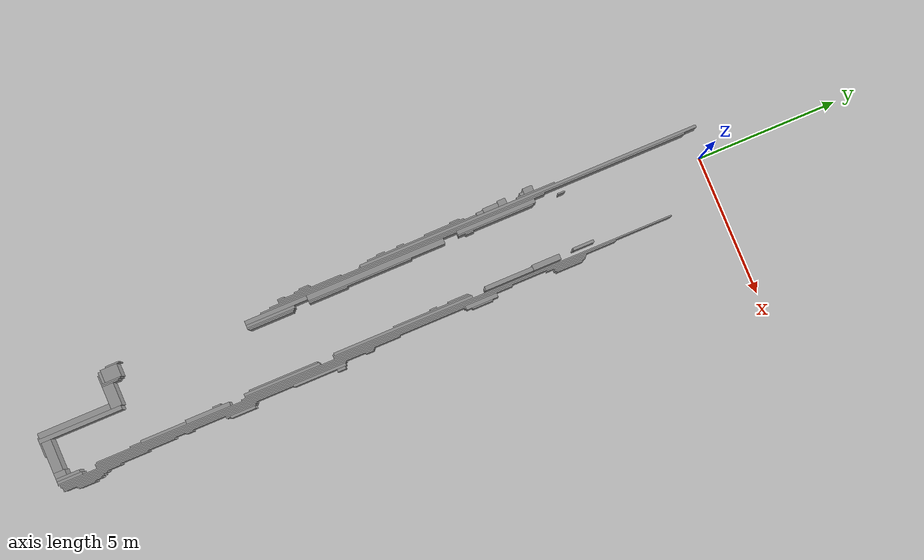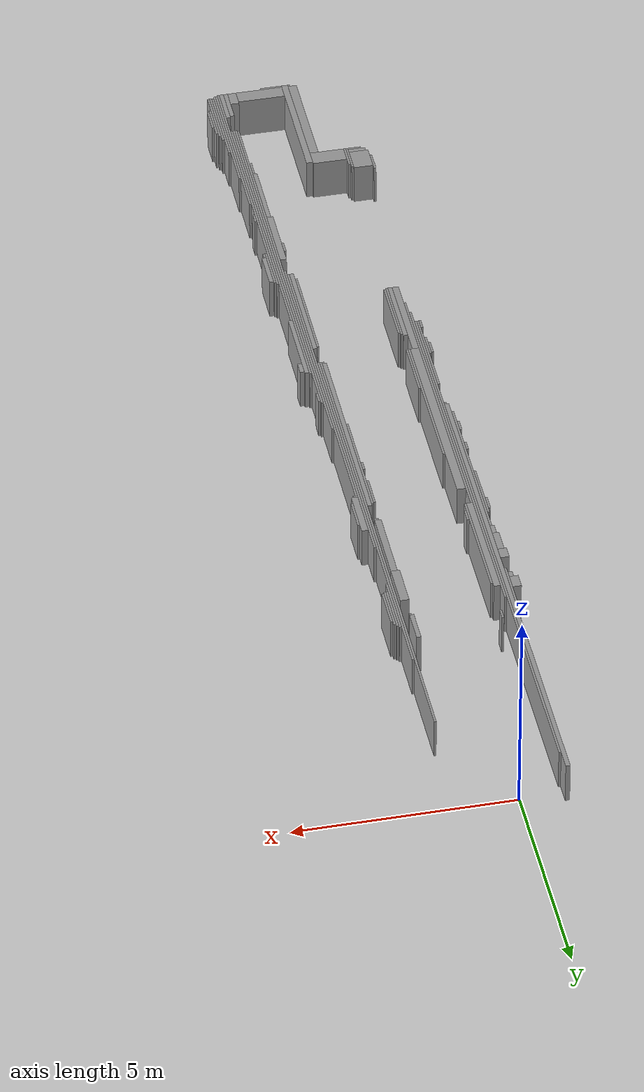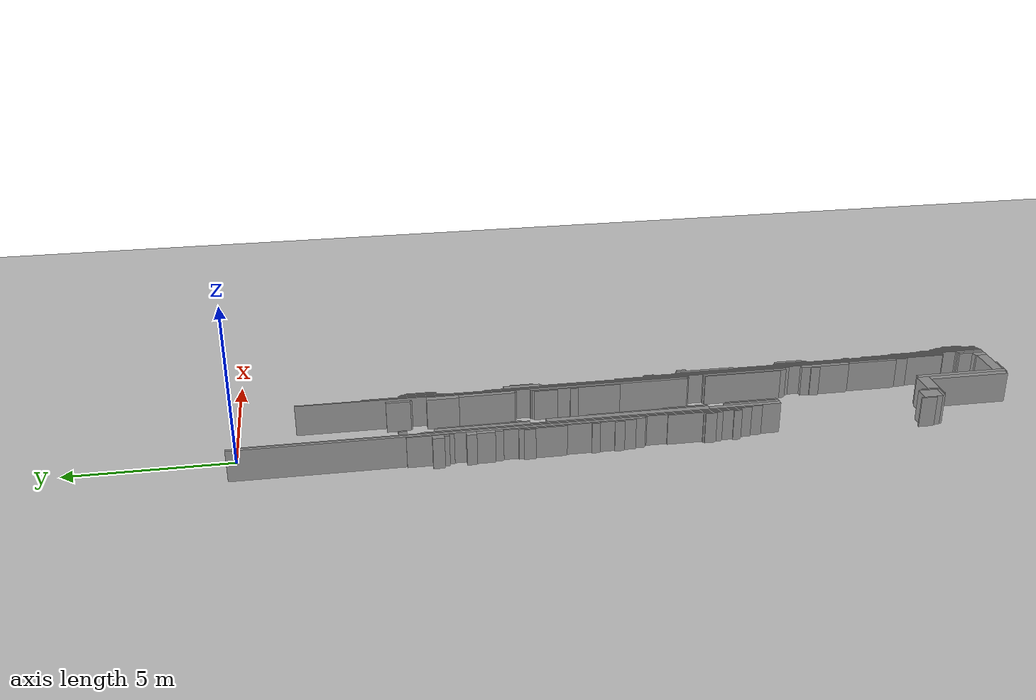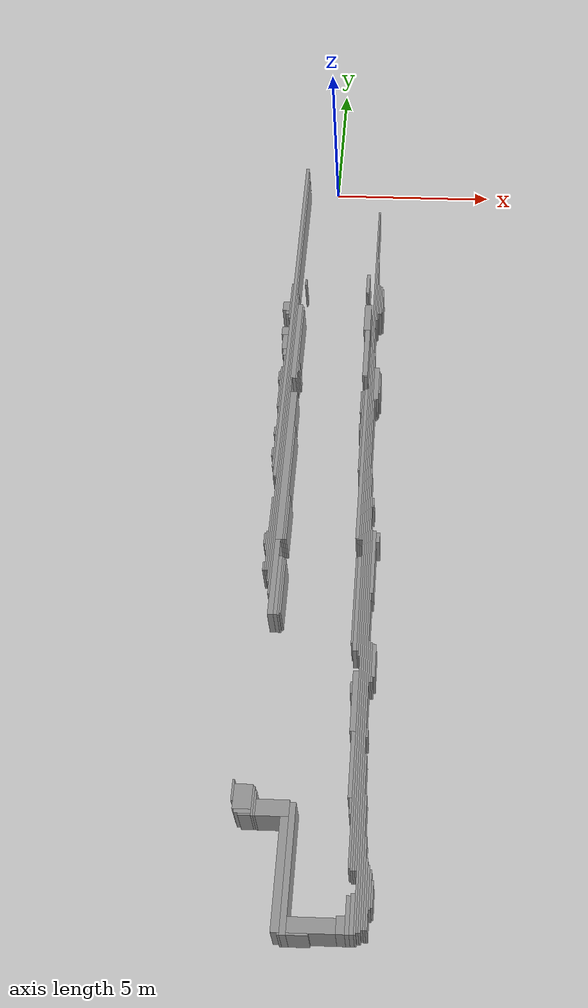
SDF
<sdf version="1.6">
 <world name="default">
  <include><uri>model://ground_plane</uri></include>
  <include><uri>model://sun</uri></include>
  <model name="wall_344">
   <static>1</static>
   <pose>-0.9999999999999929 -5.949999999999999 0.5 0 0 0</pose>
   <link name="link">
    <collision name="collision"><geometry><box><size>0.1 12.3 1.0</size></box></geometry></collision>
    <visual name="visual">
     <geometry><box><size>0.1 12.3 1.0</size></box></geometry>
     <material>
      <script><uri>file://media/materials/scripts/gazebo.material</uri><name>Gazebo/Grey</name></script>
     </material>
    </visual>
   </link>
  </model>
  <model name="wall_348">
   <static>1</static>
   <pose>-0.9249999999999972 -7.674999999999997 0.5 0 0 0</pose>
   <link name="link">
    <collision name="collision">
     <geometry><box><size>0.05 14.850000000000001 1.0</size></box></geometry>
    </collision>
    <visual name="visual">
     <geometry><box><size>0.05 14.850000000000001 1.0</size></box></geometry>
     <material>
      <script><uri>file://media/materials/scripts/gazebo.material</uri><name>Gazebo/Grey</name></script>
     </material>
    </visual>
   </link>
  </model>
  <model name="wall_361">
   <static>1</static>
   <pose>1.4750000000000014 -7.924999999999997 0.5 0 0 0</pose>
   <link name="link">
    <collision name="collision">
     <geometry><box><size>0.05 12.350000000000001 1.0</size></box></geometry>
    </collision>
    <visual name="visual">
     <geometry><box><size>0.05 12.350000000000001 1.0</size></box></geometry>
     <material>
      <script><uri>file://media/materials/scripts/gazebo.material</uri><name>Gazebo/Grey</name></script>
     </material>
    </visual>
   </link>
  </model>
  <model name="wall_368">
   <static>1</static>
   <pose>1.5250000000000057 -8.95 0.5 0 0 0</pose>
   <link name="link">
    <collision name="collision"><geometry><box><size>0.05 10.3 1.0</size></box></geometry></collision>
    <visual name="visual">
     <geometry><box><size>0.05 10.3 1.0</size></box></geometry>
     <material>
      <script><uri>file://media/materials/scripts/gazebo.material</uri><name>Gazebo/Grey</name></script>
     </material>
    </visual>
   </link>
  </model>
  <model name="wall_375">
   <static>1</static>
   <pose>1.250000000000007 -4.8749999999999964 0.5 0 0 0</pose>
   <link name="link">
    <collision name="collision"><geometry><box><size>0.1 0.75 1.0</size></box></geometry></collision>
    <visual name="visual">
     <geometry><box><size>0.1 0.75 1.0</size></box></geometry>
     <material>
      <script><uri>file://media/materials/scripts/gazebo.material</uri><name>Gazebo/Grey</name></script>
     </material>
    </visual>
   </link>
  </model>
  <model name="wall_377">
   <static>1</static>
   <pose>-0.6749999999999972 -4.8749999999999964 0.5 0 0 0</pose>
   <link name="link">
    <collision name="collision"><geometry><box><size>0.05 0.25 1.0</size></box></geometry></collision>
    <visual name="visual">
     <geometry><box><size>0.05 0.25 1.0</size></box></geometry>
     <material>
      <script><uri>file://media/materials/scripts/gazebo.material</uri><name>Gazebo/Grey</name></script>
     </material>
    </visual>
   </link>
  </model>
  <model name="wall_378">
   <static>1</static>
   <pose>1.5750000000000028 -5.6249999999999964 0.5 0 0 0</pose>
   <link name="link">
    <collision name="collision">
     <geometry><box><size>0.05 1.4500000000000002 1.0</size></box></geometry>
    </collision>
    <visual name="visual">
     <geometry><box><size>0.05 1.4500000000000002 1.0</size></box></geometry>
     <material>
      <script><uri>file://media/materials/scripts/gazebo.material</uri><name>Gazebo/Grey</name></script>
     </material>
    </visual>
   </link>
  </model>
  <model name="wall_379">
   <static>1</static>
   <pose>-1.0749999999999957 -5.649999999999999 0.5 0 0 0</pose>
   <link name="link">
    <collision name="collision">
     <geometry><box><size>0.05 1.4000000000000001 1.0</size></box></geometry>
    </collision>
    <visual name="visual">
     <geometry><box><size>0.05 1.4000000000000001 1.0</size></box></geometry>
     <material>
      <script><uri>file://media/materials/scripts/gazebo.material</uri><name>Gazebo/Grey</name></script>
     </material>
    </visual>
   </link>
  </model>
  <model name="wall_380">
   <static>1</static>
   <pose>1.625000000000007 -5.524999999999999 0.5 0 0 0</pose>
   <link name="link">
    <collision name="collision">
     <geometry><box><size>0.05 1.1500000000000001 1.0</size></box></geometry>
    </collision>
    <visual name="visual">
     <geometry><box><size>0.05 1.1500000000000001 1.0</size></box></geometry>
     <material>
      <script><uri>file://media/materials/scripts/gazebo.material</uri><name>Gazebo/Grey</name></script>
     </material>
    </visual>
   </link>
  </model>
  <model name="wall_382">
   <static>1</static>
   <pose>1.6750000000000043 -5.549999999999997 0.5 0 0 0</pose>
   <link name="link">
    <collision name="collision"><geometry><box><size>0.05 1.1 1.0</size></box></geometry></collision>
    <visual name="visual">
     <geometry><box><size>0.05 1.1 1.0</size></box></geometry>
     <material>
      <script><uri>file://media/materials/scripts/gazebo.material</uri><name>Gazebo/Grey</name></script>
     </material>
    </visual>
   </link>
  </model>
  <model name="wall_389">
   <static>1</static>
   <pose>1.7250000000000014 -5.574999999999999 0.5 0 0 0</pose>
   <link name="link">
    <collision name="collision">
     <geometry><box><size>0.05 0.9500000000000001 1.0</size></box></geometry>
    </collision>
    <visual name="visual">
     <geometry><box><size>0.05 0.9500000000000001 1.0</size></box></geometry>
     <material>
      <script><uri>file://media/materials/scripts/gazebo.material</uri><name>Gazebo/Grey</name></script>
     </material>
    </visual>
   </link>
  </model>
  <model name="wall_394">
   <static>1</static>
   <pose>1.2750000000000057 -5.274999999999999 0.5 0 0 0</pose>
   <link name="link">
    <collision name="collision"><geometry><box><size>0.05 0.05 1.0</size></box></geometry></collision>
    <visual name="visual">
     <geometry><box><size>0.05 0.05 1.0</size></box></geometry>
     <material>
      <script><uri>file://media/materials/scripts/gazebo.material</uri><name>Gazebo/Grey</name></script>
     </material>
    </visual>
   </link>
  </model>
  <model name="wall_397">
   <static>1</static>
   <pose>-0.8749999999999929 -10.424999999999997 0.5 0 0 0</pose>
   <link name="link">
    <collision name="collision"><geometry><box><size>0.05 10.05 1.0</size></box></geometry></collision>
    <visual name="visual">
     <geometry><box><size>0.05 10.05 1.0</size></box></geometry>
     <material>
      <script><uri>file://media/materials/scripts/gazebo.material</uri><name>Gazebo/Grey</name></script>
     </material>
    </visual>
   </link>
  </model>
  <model name="wall_400">
   <static>1</static>
   <pose>-1.1999999999999957 -5.8749999999999964 0.5 0 0 0</pose>
   <link name="link">
    <collision name="collision">
     <geometry><box><size>0.2 0.35000000000000003 1.0</size></box></geometry>
    </collision>
    <visual name="visual">
     <geometry><box><size>0.2 0.35000000000000003 1.0</size></box></geometry>
     <material>
      <script><uri>file://media/materials/scripts/gazebo.material</uri><name>Gazebo/Grey</name></script>
     </material>
    </visual>
   </link>
  </model>
  <model name="wall_401">
   <static>1</static>
   <pose>1.3000000000000043 -6.2499999999999964 0.5 0 0 0</pose>
   <link name="link">
    <collision name="collision"><geometry><box><size>0.2 1.0 1.0</size></box></geometry></collision>
    <visual name="visual">
     <geometry><box><size>0.2 1.0 1.0</size></box></geometry>
     <material>
      <script><uri>file://media/materials/scripts/gazebo.material</uri><name>Gazebo/Grey</name></script>
     </material>
    </visual>
   </link>
  </model>
  <model name="wall_402">
   <static>1</static>
   <pose>-0.7749999999999986 -7.224999999999998 0.5 0 0 0</pose>
   <link name="link">
    <collision name="collision">
     <geometry><box><size>0.15000000000000002 2.85 1.0</size></box></geometry>
    </collision>
    <visual name="visual">
     <geometry><box><size>0.15000000000000002 2.85 1.0</size></box></geometry>
     <material>
      <script><uri>file://media/materials/scripts/gazebo.material</uri><name>Gazebo/Grey</name></script>
     </material>
    </visual>
   </link>
  </model>
  <model name="wall_403">
   <static>1</static>
   <pose>-0.6749999999999972 -7.274999999999999 0.5 0 0 0</pose>
   <link name="link">
    <collision name="collision"><geometry><box><size>0.05 2.75 1.0</size></box></geometry></collision>
    <visual name="visual">
     <geometry><box><size>0.05 2.75 1.0</size></box></geometry>
     <material>
      <script><uri>file://media/materials/scripts/gazebo.material</uri><name>Gazebo/Grey</name></script>
     </material>
    </visual>
   </link>
  </model>
  <model name="wall_404">
   <static>1</static>
   <pose>-1.1499999999999986 -6.1249999999999964 0.5 0 0 0</pose>
   <link name="link">
    <collision name="collision">
     <geometry><box><size>0.1 0.15000000000000002 1.0</size></box></geometry>
    </collision>
    <visual name="visual">
     <geometry><box><size>0.1 0.15000000000000002 1.0</size></box></geometry>
     <material>
      <script><uri>file://media/materials/scripts/gazebo.material</uri><name>Gazebo/Grey</name></script>
     </material>
    </visual>
   </link>
  </model>
  <model name="wall_407">
   <static>1</static>
   <pose>-1.1499999999999986 -6.849999999999998 0.5 0 0 0</pose>
   <link name="link">
    <collision name="collision">
     <geometry><box><size>0.2 0.30000000000000004 1.0</size></box></geometry>
    </collision>
    <visual name="visual">
     <geometry><box><size>0.2 0.30000000000000004 1.0</size></box></geometry>
     <material>
      <script><uri>file://media/materials/scripts/gazebo.material</uri><name>Gazebo/Grey</name></script>
     </material>
    </visual>
   </link>
  </model>
  <model name="wall_410">
   <static>1</static>
   <pose>1.3250000000000028 -7.6249999999999964 0.5 0 0 0</pose>
   <link name="link">
    <collision name="collision">
     <geometry><box><size>0.15000000000000002 1.75 1.0</size></box></geometry>
    </collision>
    <visual name="visual">
     <geometry><box><size>0.15000000000000002 1.75 1.0</size></box></geometry>
     <material>
      <script><uri>file://media/materials/scripts/gazebo.material</uri><name>Gazebo/Grey</name></script>
     </material>
    </visual>
   </link>
  </model>
  <model name="wall_412">
   <static>1</static>
   <pose>-1.124999999999993 -7.274999999999999 0.5 0 0 0</pose>
   <link name="link">
    <collision name="collision">
     <geometry><box><size>0.15000000000000002 0.55 1.0</size></box></geometry>
    </collision>
    <visual name="visual">
     <geometry><box><size>0.15000000000000002 0.55 1.0</size></box></geometry>
     <material>
      <script><uri>file://media/materials/scripts/gazebo.material</uri><name>Gazebo/Grey</name></script>
     </material>
    </visual>
   </link>
  </model>
  <model name="wall_420">
   <static>1</static>
   <pose>-1.0999999999999943 -7.674999999999997 0.5 0 0 0</pose>
   <link name="link">
    <collision name="collision"><geometry><box><size>0.1 0.25 1.0</size></box></geometry></collision>
    <visual name="visual">
     <geometry><box><size>0.1 0.25 1.0</size></box></geometry>
     <material>
      <script><uri>file://media/materials/scripts/gazebo.material</uri><name>Gazebo/Grey</name></script>
     </material>
    </visual>
   </link>
  </model>
  <model name="wall_421">
   <static>1</static>
   <pose>1.5750000000000028 -12.474999999999998 0.5 0 0 0</pose>
   <link name="link">
    <collision name="collision"><geometry><box><size>0.05 9.75 1.0</size></box></geometry></collision>
    <visual name="visual">
     <geometry><box><size>0.05 9.75 1.0</size></box></geometry>
     <material>
      <script><uri>file://media/materials/scripts/gazebo.material</uri><name>Gazebo/Grey</name></script>
     </material>
    </visual>
   </link>
  </model>
  <model name="wall_423">
   <static>1</static>
   <pose>-1.0749999999999957 -9.799999999999997 0.5 0 0 0</pose>
   <link name="link">
    <collision name="collision"><geometry><box><size>0.05 4.0 1.0</size></box></geometry></collision>
    <visual name="visual">
     <geometry><box><size>0.05 4.0 1.0</size></box></geometry>
     <material>
      <script><uri>file://media/materials/scripts/gazebo.material</uri><name>Gazebo/Grey</name></script>
     </material>
    </visual>
   </link>
  </model>
  <model name="wall_425">
   <static>1</static>
   <pose>-0.6249999999999929 -8.25 0.5 0 0 0</pose>
   <link name="link">
    <collision name="collision">
     <geometry><box><size>0.05 0.30000000000000004 1.0</size></box></geometry>
    </collision>
    <visual name="visual">
     <geometry><box><size>0.05 0.30000000000000004 1.0</size></box></geometry>
     <material>
      <script><uri>file://media/materials/scripts/gazebo.material</uri><name>Gazebo/Grey</name></script>
     </material>
    </visual>
   </link>
  </model>
  <model name="wall_427">
   <static>1</static>
   <pose>1.6750000000000043 -8.774999999999999 0.5 0 0 0</pose>
   <link name="link">
    <collision name="collision">
     <geometry><box><size>0.15000000000000002 1.1500000000000001 1.0</size></box></geometry>
    </collision>
    <visual name="visual">
     <geometry><box><size>0.15000000000000002 1.1500000000000001 1.0</size></box></geometry>
     <material>
      <script><uri>file://media/materials/scripts/gazebo.material</uri><name>Gazebo/Grey</name></script>
     </material>
    </visual>
   </link>
  </model>
  <model name="wall_428">
   <static>1</static>
   <pose>-1.124999999999993 -8.974999999999998 0.5 0 0 0</pose>
   <link name="link">
    <collision name="collision">
     <geometry><box><size>0.05 1.4500000000000002 1.0</size></box></geometry>
    </collision>
    <visual name="visual">
     <geometry><box><size>0.05 1.4500000000000002 1.0</size></box></geometry>
     <material>
      <script><uri>file://media/materials/scripts/gazebo.material</uri><name>Gazebo/Grey</name></script>
     </material>
    </visual>
   </link>
  </model>
  <model name="wall_431">
   <static>1</static>
   <pose>-1.1749999999999972 -8.575 0.5 0 0 0</pose>
   <link name="link">
    <collision name="collision">
     <geometry><box><size>0.05 0.35000000000000003 1.0</size></box></geometry>
    </collision>
    <visual name="visual">
     <geometry><box><size>0.05 0.35000000000000003 1.0</size></box></geometry>
     <material>
      <script><uri>file://media/materials/scripts/gazebo.material</uri><name>Gazebo/Grey</name></script>
     </material>
    </visual>
   </link>
  </model>
  <model name="wall_432">
   <static>1</static>
   <pose>1.7750000000000057 -8.774999999999999 0.5 0 0 0</pose>
   <link name="link">
    <collision name="collision"><geometry><box><size>0.05 0.75 1.0</size></box></geometry></collision>
    <visual name="visual">
     <geometry><box><size>0.05 0.75 1.0</size></box></geometry>
     <material>
      <script><uri>file://media/materials/scripts/gazebo.material</uri><name>Gazebo/Grey</name></script>
     </material>
    </visual>
   </link>
  </model>
  <model name="wall_434">
   <static>1</static>
   <pose>1.3500000000000014 -8.524999999999999 0.5 0 0 0</pose>
   <link name="link">
    <collision name="collision"><geometry><box><size>0.1 0.05 1.0</size></box></geometry></collision>
    <visual name="visual">
     <geometry><box><size>0.1 0.05 1.0</size></box></geometry>
     <material>
      <script><uri>file://media/materials/scripts/gazebo.material</uri><name>Gazebo/Grey</name></script>
     </material>
    </visual>
   </link>
  </model>
  <model name="wall_436">
   <static>1</static>
   <pose>-0.8249999999999957 -12.224999999999998 0.5 0 0 0</pose>
   <link name="link">
    <collision name="collision"><geometry><box><size>0.05 7.15 1.0</size></box></geometry></collision>
    <visual name="visual">
     <geometry><box><size>0.05 7.15 1.0</size></box></geometry>
     <material>
      <script><uri>file://media/materials/scripts/gazebo.material</uri><name>Gazebo/Grey</name></script>
     </material>
    </visual>
   </link>
  </model>
  <model name="wall_439">
   <static>1</static>
   <pose>1.4000000000000057 -11.524999999999999 0.5 0 0 0</pose>
   <link name="link">
    <collision name="collision"><geometry><box><size>0.1 5.050000000000001 1.0</size></box></geometry></collision>
    <visual name="visual">
     <geometry><box><size>0.1 5.050000000000001 1.0</size></box></geometry>
     <material>
      <script><uri>file://media/materials/scripts/gazebo.material</uri><name>Gazebo/Grey</name></script>
     </material>
    </visual>
   </link>
  </model>
  <model name="wall_440">
   <static>1</static>
   <pose>1.3250000000000028 -10.45 0.5 0 0 0</pose>
   <link name="link">
    <collision name="collision">
     <geometry><box><size>0.05 2.8000000000000003 1.0</size></box></geometry>
    </collision>
    <visual name="visual">
     <geometry><box><size>0.05 2.8000000000000003 1.0</size></box></geometry>
     <material>
      <script><uri>file://media/materials/scripts/gazebo.material</uri><name>Gazebo/Grey</name></script>
     </material>
    </visual>
   </link>
  </model>
  <model name="wall_441">
   <static>1</static>
   <pose>1.2750000000000057 -9.474999999999998 0.5 0 0 0</pose>
   <link name="link">
    <collision name="collision"><geometry><box><size>0.05 0.75 1.0</size></box></geometry></collision>
    <visual name="visual">
     <geometry><box><size>0.05 0.75 1.0</size></box></geometry>
     <material>
      <script><uri>file://media/materials/scripts/gazebo.material</uri><name>Gazebo/Grey</name></script>
     </material>
    </visual>
   </link>
  </model>
  <model name="wall_443">
   <static>1</static>
   <pose>-0.6999999999999957 -11.649999999999999 0.5 0 0 0</pose>
   <link name="link">
    <collision name="collision"><geometry><box><size>0.2 5.0 1.0</size></box></geometry></collision>
    <visual name="visual">
     <geometry><box><size>0.2 5.0 1.0</size></box></geometry>
     <material>
      <script><uri>file://media/materials/scripts/gazebo.material</uri><name>Gazebo/Grey</name></script>
     </material>
    </visual>
   </link>
  </model>
  <model name="wall_445">
   <static>1</static>
   <pose>1.6500000000000057 -9.375 0.5 0 0 0</pose>
   <link name="link">
    <collision name="collision"><geometry><box><size>0.1 0.05 1.0</size></box></geometry></collision>
    <visual name="visual">
     <geometry><box><size>0.1 0.05 1.0</size></box></geometry>
     <material>
      <script><uri>file://media/materials/scripts/gazebo.material</uri><name>Gazebo/Grey</name></script>
     </material>
    </visual>
   </link>
  </model>
  <model name="wall_447">
   <static>1</static>
   <pose>1.625000000000007 -13.45 0.5 0 0 0</pose>
   <link name="link">
    <collision name="collision"><geometry><box><size>0.05 8.1 1.0</size></box></geometry></collision>
    <visual name="visual">
     <geometry><box><size>0.05 8.1 1.0</size></box></geometry>
     <material>
      <script><uri>file://media/materials/scripts/gazebo.material</uri><name>Gazebo/Grey</name></script>
     </material>
    </visual>
   </link>
  </model>
  <model name="wall_452">
   <static>1</static>
   <pose>1.2750000000000057 -10.375 0.5 0 0 0</pose>
   <link name="link">
    <collision name="collision"><geometry><box><size>0.05 0.25 1.0</size></box></geometry></collision>
    <visual name="visual">
     <geometry><box><size>0.05 0.25 1.0</size></box></geometry>
     <material>
      <script><uri>file://media/materials/scripts/gazebo.material</uri><name>Gazebo/Grey</name></script>
     </material>
    </visual>
   </link>
  </model>
  <model name="wall_455">
   <static>1</static>
   <pose>-0.5749999999999957 -12.274999999999999 0.5 0 0 0</pose>
   <link name="link">
    <collision name="collision"><geometry><box><size>0.05 3.75 1.0</size></box></geometry></collision>
    <visual name="visual">
     <geometry><box><size>0.05 3.75 1.0</size></box></geometry>
     <material>
      <script><uri>file://media/materials/scripts/gazebo.material</uri><name>Gazebo/Grey</name></script>
     </material>
    </visual>
   </link>
  </model>
  <model name="wall_456">
   <static>1</static>
   <pose>-1.124999999999993 -10.575 0.5 0 0 0</pose>
   <link name="link">
    <collision name="collision"><geometry><box><size>0.05 0.25 1.0</size></box></geometry></collision>
    <visual name="visual">
     <geometry><box><size>0.05 0.25 1.0</size></box></geometry>
     <material>
      <script><uri>file://media/materials/scripts/gazebo.material</uri><name>Gazebo/Grey</name></script>
     </material>
    </visual>
   </link>
  </model>
  <model name="wall_460">
   <static>1</static>
   <pose>-1.124999999999993 -11.299999999999999 0.5 0 0 0</pose>
   <link name="link">
    <collision name="collision">
     <geometry><box><size>0.05 0.30000000000000004 1.0</size></box></geometry>
    </collision>
    <visual name="visual">
     <geometry><box><size>0.05 0.30000000000000004 1.0</size></box></geometry>
     <material>
      <script><uri>file://media/materials/scripts/gazebo.material</uri><name>Gazebo/Grey</name></script>
     </material>
    </visual>
   </link>
  </model>
  <model name="wall_464">
   <static>1</static>
   <pose>1.6750000000000043 -17.275 0.5 0 0 0</pose>
   <link name="link">
    <collision name="collision"><geometry><box><size>0.05 11.05 1.0</size></box></geometry></collision>
    <visual name="visual">
     <geometry><box><size>0.05 11.05 1.0</size></box></geometry>
     <material>
      <script><uri>file://media/materials/scripts/gazebo.material</uri><name>Gazebo/Grey</name></script>
     </material>
    </visual>
   </link>
  </model>
  <model name="wall_467">
   <static>1</static>
   <pose>-0.9749999999999943 -12.124999999999998 0.5 0 0 0</pose>
   <link name="link">
    <collision name="collision"><geometry><box><size>0.05 0.05 1.0</size></box></geometry></collision>
    <visual name="visual">
     <geometry><box><size>0.05 0.05 1.0</size></box></geometry>
     <material>
      <script><uri>file://media/materials/scripts/gazebo.material</uri><name>Gazebo/Grey</name></script>
     </material>
    </visual>
   </link>
  </model>
  <model name="wall_471">
   <static>1</static>
   <pose>1.7250000000000014 -17.775 0.5 0 0 0</pose>
   <link name="link">
    <collision name="collision"><geometry><box><size>0.05 10.15 1.0</size></box></geometry></collision>
    <visual name="visual">
     <geometry><box><size>0.05 10.15 1.0</size></box></geometry>
     <material>
      <script><uri>file://media/materials/scripts/gazebo.material</uri><name>Gazebo/Grey</name></script>
     </material>
    </visual>
   </link>
  </model>
  <model name="wall_473">
   <static>1</static>
   <pose>-0.5249999999999986 -13.45 0.5 0 0 0</pose>
   <link name="link">
    <collision name="collision">
     <geometry><box><size>0.05 1.4000000000000001 1.0</size></box></geometry>
    </collision>
    <visual name="visual">
     <geometry><box><size>0.05 1.4000000000000001 1.0</size></box></geometry>
     <material>
      <script><uri>file://media/materials/scripts/gazebo.material</uri><name>Gazebo/Grey</name></script>
     </material>
    </visual>
   </link>
  </model>
  <model name="wall_474">
   <static>1</static>
   <pose>1.7750000000000057 -12.899999999999999 0.5 0 0 0</pose>
   <link name="link">
    <collision name="collision">
     <geometry><box><size>0.05 0.30000000000000004 1.0</size></box></geometry>
    </collision>
    <visual name="visual">
     <geometry><box><size>0.05 0.30000000000000004 1.0</size></box></geometry>
     <material>
      <script><uri>file://media/materials/scripts/gazebo.material</uri><name>Gazebo/Grey</name></script>
     </material>
    </visual>
   </link>
  </model>
  <model name="wall_475">
   <static>1</static>
   <pose>-0.9749999999999943 -13.95 0.5 0 0 0</pose>
   <link name="link">
    <collision name="collision">
     <geometry><box><size>0.05 2.3000000000000003 1.0</size></box></geometry>
    </collision>
    <visual name="visual">
     <geometry><box><size>0.05 2.3000000000000003 1.0</size></box></geometry>
     <material>
      <script><uri>file://media/materials/scripts/gazebo.material</uri><name>Gazebo/Grey</name></script>
     </material>
    </visual>
   </link>
  </model>
  <model name="wall_483">
   <static>1</static>
   <pose>1.7750000000000057 -18.299999999999997 0.5 0 0 0</pose>
   <link name="link">
    <collision name="collision"><geometry><box><size>0.05 9.1 1.0</size></box></geometry></collision>
    <visual name="visual">
     <geometry><box><size>0.05 9.1 1.0</size></box></geometry>
     <material>
      <script><uri>file://media/materials/scripts/gazebo.material</uri><name>Gazebo/Grey</name></script>
     </material>
    </visual>
   </link>
  </model>
  <model name="wall_485">
   <static>1</static>
   <pose>1.8500000000000014 -14.749999999999998 0.5 0 0 0</pose>
   <link name="link">
    <collision name="collision">
     <geometry><box><size>0.1 1.9000000000000001 1.0</size></box></geometry>
    </collision>
    <visual name="visual">
     <geometry><box><size>0.1 1.9000000000000001 1.0</size></box></geometry>
     <material>
      <script><uri>file://media/materials/scripts/gazebo.material</uri><name>Gazebo/Grey</name></script>
     </material>
    </visual>
   </link>
  </model>
  <model name="wall_488">
   <static>1</static>
   <pose>1.9500000000000028 -13.999999999999998 0.5 0 0 0</pose>
   <link name="link">
    <collision name="collision">
     <geometry><box><size>0.1 0.30000000000000004 1.0</size></box></geometry>
    </collision>
    <visual name="visual">
     <geometry><box><size>0.1 0.30000000000000004 1.0</size></box></geometry>
     <material>
      <script><uri>file://media/materials/scripts/gazebo.material</uri><name>Gazebo/Grey</name></script>
     </material>
    </visual>
   </link>
  </model>
  <model name="wall_490">
   <static>1</static>
   <pose>-1.0249999999999986 -14.2 0.5 0 0 0</pose>
   <link name="link">
    <collision name="collision">
     <geometry><box><size>0.05 0.6000000000000001 1.0</size></box></geometry>
    </collision>
    <visual name="visual">
     <geometry><box><size>0.05 0.6000000000000001 1.0</size></box></geometry>
     <material>
      <script><uri>file://media/materials/scripts/gazebo.material</uri><name>Gazebo/Grey</name></script>
     </material>
    </visual>
   </link>
  </model>
  <model name="wall_492">
   <static>1</static>
   <pose>-1.0749999999999957 -14.124999999999998 0.5 0 0 0</pose>
   <link name="link">
    <collision name="collision">
     <geometry><box><size>0.05 0.35000000000000003 1.0</size></box></geometry>
    </collision>
    <visual name="visual">
     <geometry><box><size>0.05 0.35000000000000003 1.0</size></box></geometry>
     <material>
      <script><uri>file://media/materials/scripts/gazebo.material</uri><name>Gazebo/Grey</name></script>
     </material>
    </visual>
   </link>
  </model>
  <model name="wall_494">
   <static>1</static>
   <pose>1.4250000000000043 -14.075 0.5 0 0 0</pose>
   <link name="link">
    <collision name="collision"><geometry><box><size>0.05 0.05 1.0</size></box></geometry></collision>
    <visual name="visual">
     <geometry><box><size>0.05 0.05 1.0</size></box></geometry>
     <material>
      <script><uri>file://media/materials/scripts/gazebo.material</uri><name>Gazebo/Grey</name></script>
     </material>
    </visual>
   </link>
  </model>
  <model name="wall_497">
   <static>1</static>
   <pose>-0.7249999999999943 -15.274999999999999 0.5 0 0 0</pose>
   <link name="link">
    <collision name="collision">
     <geometry><box><size>0.15000000000000002 2.25 1.0</size></box></geometry>
    </collision>
    <visual name="visual">
     <geometry><box><size>0.15000000000000002 2.25 1.0</size></box></geometry>
     <material>
      <script><uri>file://media/materials/scripts/gazebo.material</uri><name>Gazebo/Grey</name></script>
     </material>
    </visual>
   </link>
  </model>
  <model name="wall_499">
   <static>1</static>
   <pose>1.500000000000007 -15.974999999999998 0.5 0 0 0</pose>
   <link name="link">
    <collision name="collision"><geometry><box><size>0.1 2.75 1.0</size></box></geometry></collision>
    <visual name="visual">
     <geometry><box><size>0.1 2.75 1.0</size></box></geometry>
     <material>
      <script><uri>file://media/materials/scripts/gazebo.material</uri><name>Gazebo/Grey</name></script>
     </material>
    </visual>
   </link>
  </model>
  <model name="wall_500">
   <static>1</static>
   <pose>-0.5999999999999943 -15.524999999999999 0.5 0 0 0</pose>
   <link name="link">
    <collision name="collision"><geometry><box><size>0.1 1.75 1.0</size></box></geometry></collision>
    <visual name="visual">
     <geometry><box><size>0.1 1.75 1.0</size></box></geometry>
     <material>
      <script><uri>file://media/materials/scripts/gazebo.material</uri><name>Gazebo/Grey</name></script>
     </material>
    </visual>
   </link>
  </model>
  <model name="wall_501">
   <static>1</static>
   <pose>1.4250000000000043 -15.899999999999999 0.5 0 0 0</pose>
   <link name="link">
    <collision name="collision"><geometry><box><size>0.05 2.5 1.0</size></box></geometry></collision>
    <visual name="visual">
     <geometry><box><size>0.05 2.5 1.0</size></box></geometry>
     <material>
      <script><uri>file://media/materials/scripts/gazebo.material</uri><name>Gazebo/Grey</name></script>
     </material>
    </visual>
   </link>
  </model>
  <model name="wall_503">
   <static>1</static>
   <pose>-0.5249999999999986 -15.549999999999999 0.5 0 0 0</pose>
   <link name="link">
    <collision name="collision">
     <geometry><box><size>0.05 1.7000000000000002 1.0</size></box></geometry>
    </collision>
    <visual name="visual">
     <geometry><box><size>0.05 1.7000000000000002 1.0</size></box></geometry>
     <material>
      <script><uri>file://media/materials/scripts/gazebo.material</uri><name>Gazebo/Grey</name></script>
     </material>
    </visual>
   </link>
  </model>
  <model name="wall_504">
   <static>1</static>
   <pose>-0.4749999999999943 -15.549999999999999 0.5 0 0 0</pose>
   <link name="link">
    <collision name="collision"><geometry><box><size>0.05 1.6 1.0</size></box></geometry></collision>
    <visual name="visual">
     <geometry><box><size>0.05 1.6 1.0</size></box></geometry>
     <material>
      <script><uri>file://media/materials/scripts/gazebo.material</uri><name>Gazebo/Grey</name></script>
     </material>
    </visual>
   </link>
  </model>
  <model name="wall_506">
   <static>1</static>
   <pose>-1.0249999999999986 -14.974999999999998 0.5 0 0 0</pose>
   <link name="link">
    <collision name="collision"><geometry><box><size>0.05 0.25 1.0</size></box></geometry></collision>
    <visual name="visual">
     <geometry><box><size>0.05 0.25 1.0</size></box></geometry>
     <material>
      <script><uri>file://media/materials/scripts/gazebo.material</uri><name>Gazebo/Grey</name></script>
     </material>
    </visual>
   </link>
  </model>
  <model name="wall_516">
   <static>1</static>
   <pose>1.8250000000000028 -19.275 0.5 0 0 0</pose>
   <link name="link">
    <collision name="collision"><geometry><box><size>0.05 7.15 1.0</size></box></geometry></collision>
    <visual name="visual">
     <geometry><box><size>0.05 7.15 1.0</size></box></geometry>
     <material>
      <script><uri>file://media/materials/scripts/gazebo.material</uri><name>Gazebo/Grey</name></script>
     </material>
    </visual>
   </link>
  </model>
  <model name="wall_535">
   <static>1</static>
   <pose>1.875000000000007 -20.65 0.5 0 0 0</pose>
   <link name="link">
    <collision name="collision"><geometry><box><size>0.05 7.2 1.0</size></box></geometry></collision>
    <visual name="visual">
     <geometry><box><size>0.05 7.2 1.0</size></box></geometry>
     <material>
      <script><uri>file://media/materials/scripts/gazebo.material</uri><name>Gazebo/Grey</name></script>
     </material>
    </visual>
   </link>
  </model>
  <model name="wall_536">
   <static>1</static>
   <pose>1.9250000000000043 -17.65 0.5 0 0 0</pose>
   <link name="link">
    <collision name="collision"><geometry><box><size>0.05 1.1 1.0</size></box></geometry></collision>
    <visual name="visual">
     <geometry><box><size>0.05 1.1 1.0</size></box></geometry>
     <material>
      <script><uri>file://media/materials/scripts/gazebo.material</uri><name>Gazebo/Grey</name></script>
     </material>
    </visual>
   </link>
  </model>
  <model name="wall_537">
   <static>1</static>
   <pose>2.000000000000007 -17.599999999999998 0.5 0 0 0</pose>
   <link name="link">
    <collision name="collision"><geometry><box><size>0.1 0.9 1.0</size></box></geometry></collision>
    <visual name="visual">
     <geometry><box><size>0.1 0.9 1.0</size></box></geometry>
     <material>
      <script><uri>file://media/materials/scripts/gazebo.material</uri><name>Gazebo/Grey</name></script>
     </material>
    </visual>
   </link>
  </model>
  <model name="wall_543">
   <static>1</static>
   <pose>1.5750000000000028 -18.7 0.5 0 0 0</pose>
   <link name="link">
    <collision name="collision">
     <geometry><box><size>0.15000000000000002 1.6 1.0</size></box></geometry>
    </collision>
    <visual name="visual">
     <geometry><box><size>0.15000000000000002 1.6 1.0</size></box></geometry>
     <material>
      <script><uri>file://media/materials/scripts/gazebo.material</uri><name>Gazebo/Grey</name></script>
     </material>
    </visual>
   </link>
  </model>
  <model name="wall_546">
   <static>1</static>
   <pose>1.9750000000000014 -18.125 0.5 0 0 0</pose>
   <link name="link">
    <collision name="collision">
     <geometry><box><size>0.05 0.15000000000000002 1.0</size></box></geometry>
    </collision>
    <visual name="visual">
     <geometry><box><size>0.05 0.15000000000000002 1.0</size></box></geometry>
     <material>
      <script><uri>file://media/materials/scripts/gazebo.material</uri><name>Gazebo/Grey</name></script>
     </material>
    </visual>
   </link>
  </model>
  <model name="wall_548">
   <static>1</static>
   <pose>1.4750000000000014 -18.35 0.5 0 0 0</pose>
   <link name="link">
    <collision name="collision">
     <geometry><box><size>0.05 0.30000000000000004 1.0</size></box></geometry>
    </collision>
    <visual name="visual">
     <geometry><box><size>0.05 0.30000000000000004 1.0</size></box></geometry>
     <material>
      <script><uri>file://media/materials/scripts/gazebo.material</uri><name>Gazebo/Grey</name></script>
     </material>
    </visual>
   </link>
  </model>
  <model name="wall_559">
   <static>1</static>
   <pose>1.9250000000000043 -19.525 0.5 0 0 0</pose>
   <link name="link">
    <collision name="collision"><geometry><box><size>0.05 0.25 1.0</size></box></geometry></collision>
    <visual name="visual">
     <geometry><box><size>0.05 0.25 1.0</size></box></geometry>
     <material>
      <script><uri>file://media/materials/scripts/gazebo.material</uri><name>Gazebo/Grey</name></script>
     </material>
    </visual>
   </link>
  </model>
  <model name="wall_563">
   <static>1</static>
   <pose>1.6000000000000014 -20.325 0.5 0 0 0</pose>
   <link name="link">
    <collision name="collision">
     <geometry><box><size>0.1 1.6500000000000001 1.0</size></box></geometry>
    </collision>
    <visual name="visual">
     <geometry><box><size>0.1 1.6500000000000001 1.0</size></box></geometry>
     <material>
      <script><uri>file://media/materials/scripts/gazebo.material</uri><name>Gazebo/Grey</name></script>
     </material>
    </visual>
   </link>
  </model>
  <model name="wall_577">
   <static>1</static>
   <pose>1.9250000000000043 -22.125 0.5 0 0 0</pose>
   <link name="link">
    <collision name="collision"><geometry><box><size>0.05 4.15 1.0</size></box></geometry></collision>
    <visual name="visual">
     <geometry><box><size>0.05 4.15 1.0</size></box></geometry>
     <material>
      <script><uri>file://media/materials/scripts/gazebo.material</uri><name>Gazebo/Grey</name></script>
     </material>
    </visual>
   </link>
  </model>
  <model name="wall_596">
   <static>1</static>
   <pose>-1.1749999999999972 -21.049999999999997 0.5 0 0 0</pose>
   <link name="link">
    <collision name="collision"><geometry><box><size>0.05 0.5 1.0</size></box></geometry></collision>
    <visual name="visual">
     <geometry><box><size>0.05 0.5 1.0</size></box></geometry>
     <material>
      <script><uri>file://media/materials/scripts/gazebo.material</uri><name>Gazebo/Grey</name></script>
     </material>
    </visual>
   </link>
  </model>
  <model name="wall_600">
   <static>1</static>
   <pose>-0.9249999999999972 -21.2 0.5 0 0 0</pose>
   <link name="link">
    <collision name="collision">
     <geometry><box><size>0.45 0.6000000000000001 1.0</size></box></geometry>
    </collision>
    <visual name="visual">
     <geometry><box><size>0.45 0.6000000000000001 1.0</size></box></geometry>
     <material>
      <script><uri>file://media/materials/scripts/gazebo.material</uri><name>Gazebo/Grey</name></script>
     </material>
    </visual>
   </link>
  </model>
  <model name="wall_602">
   <static>1</static>
   <pose>-0.6749999999999972 -21.299999999999997 0.5 0 0 0</pose>
   <link name="link">
    <collision name="collision">
     <geometry><box><size>0.05 0.7000000000000001 1.0</size></box></geometry>
    </collision>
    <visual name="visual">
     <geometry><box><size>0.05 0.7000000000000001 1.0</size></box></geometry>
     <material>
      <script><uri>file://media/materials/scripts/gazebo.material</uri><name>Gazebo/Grey</name></script>
     </material>
    </visual>
   </link>
  </model>
  <model name="wall_604">
   <static>1</static>
   <pose>-0.6249999999999929 -21.349999999999998 0.5 0 0 0</pose>
   <link name="link">
    <collision name="collision">
     <geometry><box><size>0.05 0.6000000000000001 1.0</size></box></geometry>
    </collision>
    <visual name="visual">
     <geometry><box><size>0.05 0.6000000000000001 1.0</size></box></geometry>
     <material>
      <script><uri>file://media/materials/scripts/gazebo.material</uri><name>Gazebo/Grey</name></script>
     </material>
    </visual>
   </link>
  </model>
  <model name="wall_605">
   <static>1</static>
   <pose>1.9750000000000014 -22.625 0.5 0 0 0</pose>
   <link name="link">
    <collision name="collision">
     <geometry><box><size>0.05 3.1500000000000004 1.0</size></box></geometry>
    </collision>
    <visual name="visual">
     <geometry><box><size>0.05 3.1500000000000004 1.0</size></box></geometry>
     <material>
      <script><uri>file://media/materials/scripts/gazebo.material</uri><name>Gazebo/Grey</name></script>
     </material>
    </visual>
   </link>
  </model>
  <model name="wall_607">
   <static>1</static>
   <pose>1.625000000000007 -21.349999999999998 0.5 0 0 0</pose>
   <link name="link">
    <collision name="collision"><geometry><box><size>0.05 0.4 1.0</size></box></geometry></collision>
    <visual name="visual">
     <geometry><box><size>0.05 0.4 1.0</size></box></geometry>
     <material>
      <script><uri>file://media/materials/scripts/gazebo.material</uri><name>Gazebo/Grey</name></script>
     </material>
    </visual>
   </link>
  </model>
  <model name="wall_611">
   <static>1</static>
   <pose>-0.19999999999999574 -21.45 0.5 0 0 0</pose>
   <link name="link">
    <collision name="collision"><geometry><box><size>0.8 0.4 1.0</size></box></geometry></collision>
    <visual name="visual">
     <geometry><box><size>0.8 0.4 1.0</size></box></geometry>
     <material>
      <script><uri>file://media/materials/scripts/gazebo.material</uri><name>Gazebo/Grey</name></script>
     </material>
    </visual>
   </link>
  </model>
  <model name="wall_612">
   <static>1</static>
   <pose>0.2750000000000057 -22.799999999999997 0.5 0 0 0</pose>
   <link name="link">
    <collision name="collision">
     <geometry><box><size>0.15000000000000002 3.0 1.0</size></box></geometry>
    </collision>
    <visual name="visual">
     <geometry><box><size>0.15000000000000002 3.0 1.0</size></box></geometry>
     <material>
      <script><uri>file://media/materials/scripts/gazebo.material</uri><name>Gazebo/Grey</name></script>
     </material>
    </visual>
   </link>
  </model>
  <model name="wall_613">
   <static>1</static>
   <pose>-0.8999999999999986 -21.549999999999997 0.5 0 0 0</pose>
   <link name="link">
    <collision name="collision"><geometry><box><size>0.4 0.1 1.0</size></box></geometry></collision>
    <visual name="visual">
     <geometry><box><size>0.4 0.1 1.0</size></box></geometry>
     <material>
      <script><uri>file://media/materials/scripts/gazebo.material</uri><name>Gazebo/Grey</name></script>
     </material>
    </visual>
   </link>
  </model>
  <model name="wall_615">
   <static>1</static>
   <pose>-0.8499999999999943 -21.625 0.5 0 0 0</pose>
   <link name="link">
    <collision name="collision">
     <geometry><box><size>0.30000000000000004 0.05 1.0</size></box></geometry>
    </collision>
    <visual name="visual">
     <geometry><box><size>0.30000000000000004 0.05 1.0</size></box></geometry>
     <material>
      <script><uri>file://media/materials/scripts/gazebo.material</uri><name>Gazebo/Grey</name></script>
     </material>
    </visual>
   </link>
  </model>
  <model name="wall_616">
   <static>1</static>
   <pose>0.10000000000000142 -22.95 0.5 0 0 0</pose>
   <link name="link">
    <collision name="collision"><geometry><box><size>0.2 2.6 1.0</size></box></geometry></collision>
    <visual name="visual">
     <geometry><box><size>0.2 2.6 1.0</size></box></geometry>
     <material>
      <script><uri>file://media/materials/scripts/gazebo.material</uri><name>Gazebo/Grey</name></script>
     </material>
    </visual>
   </link>
  </model>
  <model name="wall_620">
   <static>1</static>
   <pose>2.0250000000000057 -23.099999999999998 0.5 0 0 0</pose>
   <link name="link">
    <collision name="collision"><geometry><box><size>0.05 2.1 1.0</size></box></geometry></collision>
    <visual name="visual">
     <geometry><box><size>0.05 2.1 1.0</size></box></geometry>
     <material>
      <script><uri>file://media/materials/scripts/gazebo.material</uri><name>Gazebo/Grey</name></script>
     </material>
    </visual>
   </link>
  </model>
  <model name="wall_627">
   <static>1</static>
   <pose>2.075000000000003 -23.349999999999998 0.5 0 0 0</pose>
   <link name="link">
    <collision name="collision"><geometry><box><size>0.05 1.6 1.0</size></box></geometry></collision>
    <visual name="visual">
     <geometry><box><size>0.05 1.6 1.0</size></box></geometry>
     <material>
      <script><uri>file://media/materials/scripts/gazebo.material</uri><name>Gazebo/Grey</name></script>
     </material>
    </visual>
   </link>
  </model>
  <model name="wall_629">
   <static>1</static>
   <pose>2.125000000000007 -23.424999999999997 0.5 0 0 0</pose>
   <link name="link">
    <collision name="collision">
     <geometry><box><size>0.05 1.4500000000000002 1.0</size></box></geometry>
    </collision>
    <visual name="visual">
     <geometry><box><size>0.05 1.4500000000000002 1.0</size></box></geometry>
     <material>
      <script><uri>file://media/materials/scripts/gazebo.material</uri><name>Gazebo/Grey</name></script>
     </material>
    </visual>
   </link>
  </model>
  <model name="wall_630">
   <static>1</static>
   <pose>2.1750000000000043 -23.25 0.5 0 0 0</pose>
   <link name="link">
    <collision name="collision"><geometry><box><size>0.05 0.9 1.0</size></box></geometry></collision>
    <visual name="visual">
     <geometry><box><size>0.05 0.9 1.0</size></box></geometry>
     <material>
      <script><uri>file://media/materials/scripts/gazebo.material</uri><name>Gazebo/Grey</name></script>
     </material>
    </visual>
   </link>
  </model>
  <model name="wall_633">
   <static>1</static>
   <pose>2.2250000000000014 -23.349999999999998 0.5 0 0 0</pose>
   <link name="link">
    <collision name="collision">
     <geometry><box><size>0.05 0.6000000000000001 1.0</size></box></geometry>
    </collision>
    <visual name="visual">
     <geometry><box><size>0.05 0.6000000000000001 1.0</size></box></geometry>
     <material>
      <script><uri>file://media/materials/scripts/gazebo.material</uri><name>Gazebo/Grey</name></script>
     </material>
    </visual>
   </link>
  </model>
  <model name="wall_639">
   <static>1</static>
   <pose>1.8000000000000043 -23.799999999999997 0.5 0 0 0</pose>
   <link name="link">
    <collision name="collision"><geometry><box><size>0.1 0.9 1.0</size></box></geometry></collision>
    <visual name="visual">
     <geometry><box><size>0.1 0.9 1.0</size></box></geometry>
     <material>
      <script><uri>file://media/materials/scripts/gazebo.material</uri><name>Gazebo/Grey</name></script>
     </material>
    </visual>
   </link>
  </model>
  <model name="wall_641">
   <static>1</static>
   <pose>1.7000000000000028 -23.825 0.5 0 0 0</pose>
   <link name="link">
    <collision name="collision">
     <geometry><box><size>0.1 0.8500000000000001 1.0</size></box></geometry>
    </collision>
    <visual name="visual">
     <geometry><box><size>0.1 0.8500000000000001 1.0</size></box></geometry>
     <material>
      <script><uri>file://media/materials/scripts/gazebo.material</uri><name>Gazebo/Grey</name></script>
     </material>
    </visual>
   </link>
  </model>
  <model name="wall_642">
   <static>1</static>
   <pose>1.5500000000000043 -24.049999999999997 0.5 0 0 0</pose>
   <link name="link">
    <collision name="collision"><geometry><box><size>0.2 0.4 1.0</size></box></geometry></collision>
    <visual name="visual">
     <geometry><box><size>0.2 0.4 1.0</size></box></geometry>
     <material>
      <script><uri>file://media/materials/scripts/gazebo.material</uri><name>Gazebo/Grey</name></script>
     </material>
    </visual>
   </link>
  </model>
  <model name="wall_643">
   <static>1</static>
   <pose>0.9000000000000057 -24.075 0.5 0 0 0</pose>
   <link name="link">
    <collision name="collision">
     <geometry><box><size>1.1 0.35000000000000003 1.0</size></box></geometry>
    </collision>
    <visual name="visual">
     <geometry><box><size>1.1 0.35000000000000003 1.0</size></box></geometry>
     <material>
      <script><uri>file://media/materials/scripts/gazebo.material</uri><name>Gazebo/Grey</name></script>
     </material>
    </visual>
   </link>
  </model>
  <model name="wall_644">
   <static>1</static>
   <pose>0.17500000000000426 -24.275 0.5 0 0 0</pose>
   <link name="link">
    <collision name="collision"><geometry><box><size>0.05 0.05 1.0</size></box></geometry></collision>
    <visual name="visual">
     <geometry><box><size>0.05 0.05 1.0</size></box></geometry>
     <material>
      <script><uri>file://media/materials/scripts/gazebo.material</uri><name>Gazebo/Grey</name></script>
     </material>
    </visual>
   </link>
  </model>
  <model name="wall_645">
   <static>1</static>
   <pose>0.6000000000000014 -24.275 0.5 0 0 0</pose>
   <link name="link">
    <collision name="collision"><geometry><box><size>0.5 0.05 1.0</size></box></geometry></collision>
    <visual name="visual">
     <geometry><box><size>0.5 0.05 1.0</size></box></geometry>
     <material>
      <script><uri>file://media/materials/scripts/gazebo.material</uri><name>Gazebo/Grey</name></script>
     </material>
    </visual>
   </link>
  </model>
 </world>
</sdf>
